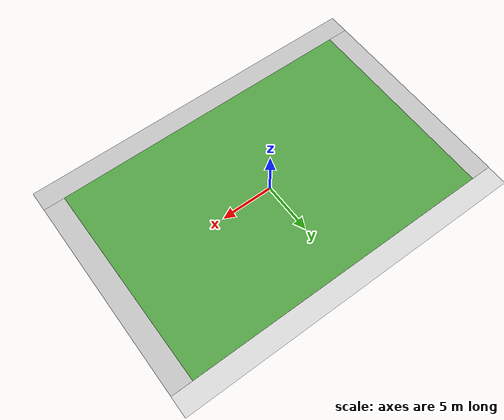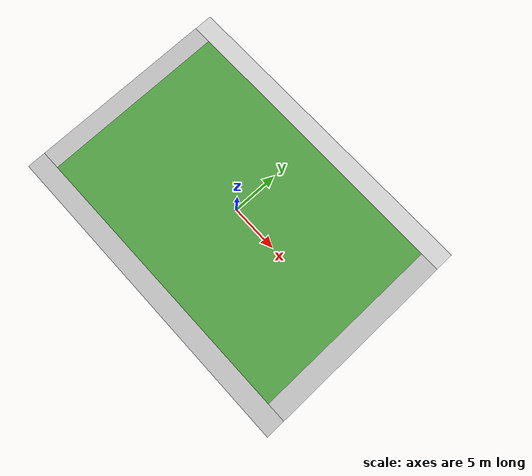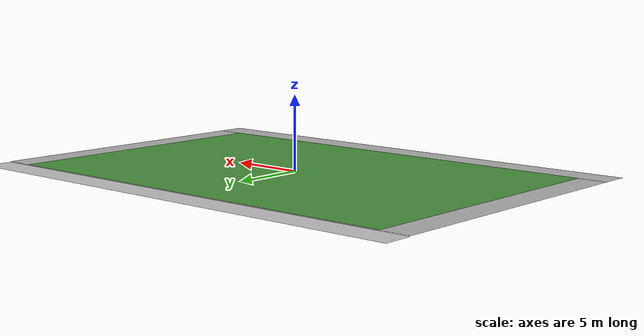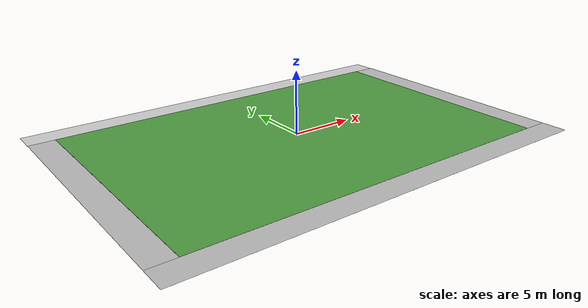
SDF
<?xml version="1.0" ?>
<sdf version="1.4">
  <model name="robocup_3d_field">
    <static>true</static>
    <link name="field">
      <pose>0 0 0.01 0 0 0</pose>
      <collision name="collision">
        <geometry>
          <plane>
            <normal>0 0 1</normal>
            <size>30.0 20.0</size>
          </plane>
        </geometry>
        <surface>
          <friction>
            <ode>
              <mu>100</mu>
              <mu2>50</mu2>
            </ode>
          </friction>
        </surface>
      </collision>
      <visual name="base1">
        <pose>0 11 0.001 0 0 0</pose>
        <cast_shadows>false</cast_shadows>
        <geometry>
          <plane>
            <normal>0 0 1</normal>
            <size>34.0 2.0</size>
          </plane>
        </geometry>
        <material>
          <script>
            <uri>model://../model_source/models/robocup_3Dsim_field/materials/scripts/</uri>
            <uri>model://../model_source/models/robocup_3Dsim_field/materials/textures/</uri>
            <name>RoboCup/FieldBorder</name>
          </script>
        </material>
      </visual>
      <visual name="base2">
        <pose>0 -11 0.001 0 0 0</pose>
        <cast_shadows>false</cast_shadows>
        <geometry>
          <plane>
            <normal>0 0 1</normal>
            <size>34.0 2.0</size>
          </plane>
        </geometry>
        <material>
          <script>
            <uri>model://../model_source/models/robocup_3Dsim_field/materials/scripts/</uri>
            <uri>model://../model_source/models/robocup_3Dsim_field/materials/textures/</uri>
            <name>RoboCup/FieldBorder</name>
          </script>
        </material>
      </visual>
      <visual name="base3">
        <pose>16 0 0.001 0 0 0</pose>
        <cast_shadows>false</cast_shadows>
        <geometry>
          <plane>
            <normal>0 0 1</normal>
            <size>2.0 20.0</size>
          </plane>
        </geometry>
        <material>
          <script>
            <uri>model://../model_source/models/robocup_3Dsim_field/materials/scripts/</uri>
            <uri>model://../model_source/models/robocup_3Dsim_field/materials/textures/</uri>
            <name>RoboCup/FieldBorder</name>
          </script>
        </material>
      </visual>
      <visual name="base4">
        <pose>-16 0 0.001 0 0 0</pose>
        <cast_shadows>false</cast_shadows>
        <geometry>
          <plane>
            <normal>0 0 1</normal>
            <size>2.0 20.0</size>
          </plane>
        </geometry>
        <material>
          <script>
            <uri>model://../model_source/models/robocup_3Dsim_field/materials/scripts/</uri>
            <uri>model://../model_source/models/robocup_3Dsim_field/materials/textures/</uri>
            <name>RoboCup/FieldBorder</name>
          </script>
        </material>
      </visual>
      <visual name="carpet">
        <cast_shadows>false</cast_shadows>
        <geometry>
          <plane>
            <normal>0 0 1</normal>
            <size>30.0 20.0</size>
          </plane>
        </geometry>
        <material>
          <script>
            <uri>model://../model_source/models/robocup_3Dsim_field/materials/scripts/</uri>
            <uri>model://../model_source/models/robocup_3Dsim_field/materials/textures/</uri>
            <name>RoboCup/Grass</name>
          </script>
        </material>
      </visual>
    </link>
  </model>
</sdf>
